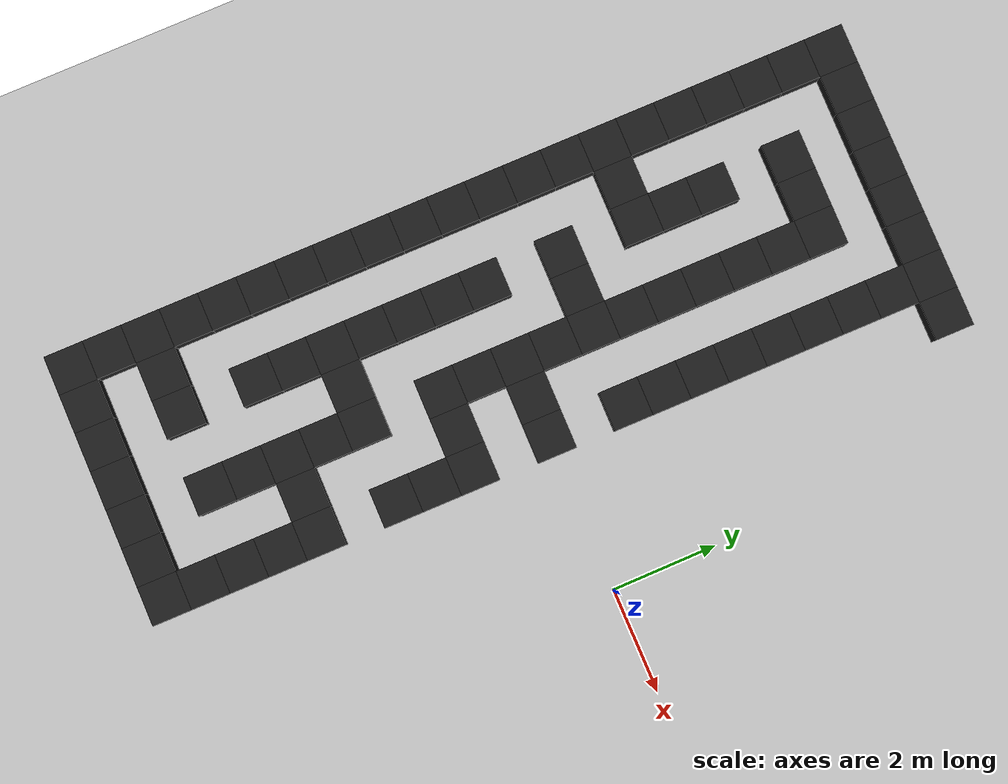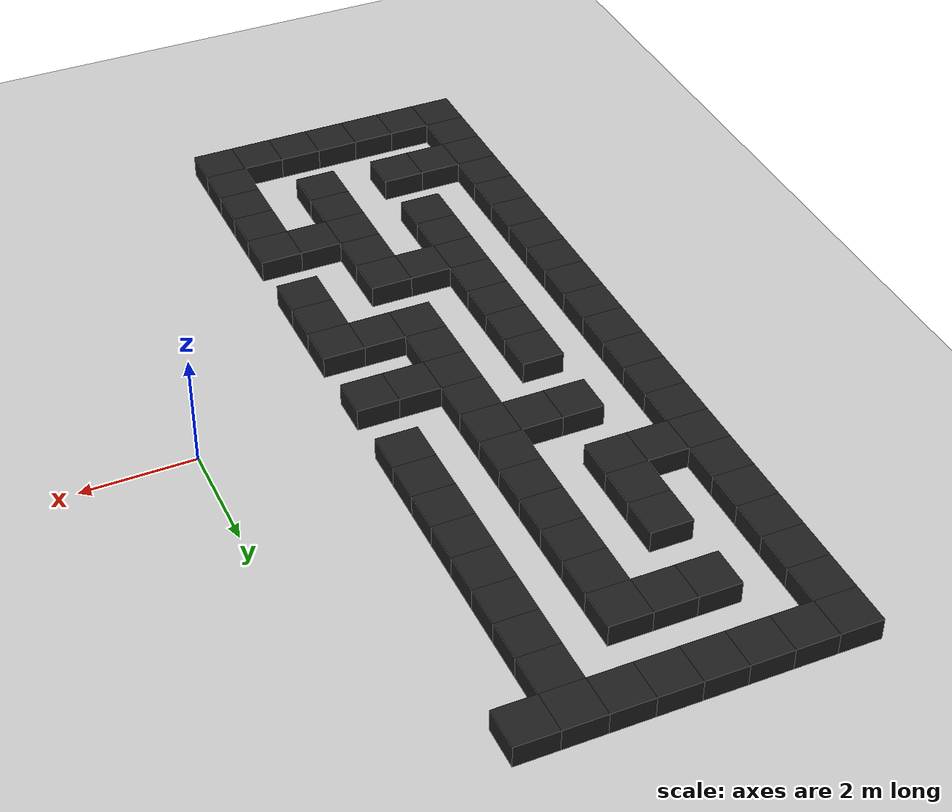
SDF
<sdf version="1.6">
 <world name="maze_gems">
  <include><uri>model://models/sun</uri></include>
  <include><uri>model://models/ground_plane</uri></include>
  <model name="walls">
   <static>true</static>
   <link name="wall_152">
    <pose>-2.25 7.5 0.2 0 0 0</pose>
    <visual name="wall_152_visual">
     <geometry><box><size>0.75 0.75 0.4</size></box></geometry>
     <material>
      <script><uri>file://media/materials/scripts/gazebo.material</uri><name>Gazebo/Black</name></script>
     </material>
    </visual>
    <collision name="wall_152_collision"><geometry><box><size>0.75 0.75 0.4</size></box></geometry></collision>
   </link>
   <link name="wall_157">
    <pose>-3.0 7.5 0.2 0 0 0</pose>
    <visual name="wall_157_visual">
     <geometry><box><size>0.75 0.75 0.4</size></box></geometry>
     <material>
      <script><uri>file://media/materials/scripts/gazebo.material</uri><name>Gazebo/Black</name></script>
     </material>
    </visual>
    <collision name="wall_157_collision"><geometry><box><size>0.75 0.75 0.4</size></box></geometry></collision>
   </link>
   <link name="wall_158">
    <pose>-3.0 6.75 0.2 0 0 0</pose>
    <visual name="wall_158_visual">
     <geometry><box><size>0.75 0.75 0.4</size></box></geometry>
     <material>
      <script><uri>file://media/materials/scripts/gazebo.material</uri><name>Gazebo/Black</name></script>
     </material>
    </visual>
    <collision name="wall_158_collision"><geometry><box><size>0.75 0.75 0.4</size></box></geometry></collision>
   </link>
   <link name="wall_159">
    <pose>-3.0 6.0 0.2 0 0 0</pose>
    <visual name="wall_159_visual">
     <geometry><box><size>0.75 0.75 0.4</size></box></geometry>
     <material>
      <script><uri>file://media/materials/scripts/gazebo.material</uri><name>Gazebo/Black</name></script>
     </material>
    </visual>
    <collision name="wall_159_collision"><geometry><box><size>0.75 0.75 0.4</size></box></geometry></collision>
   </link>
   <link name="wall_160">
    <pose>-3.0 5.25 0.2 0 0 0</pose>
    <visual name="wall_160_visual">
     <geometry><box><size>0.75 0.75 0.4</size></box></geometry>
     <material>
      <script><uri>file://media/materials/scripts/gazebo.material</uri><name>Gazebo/Black</name></script>
     </material>
    </visual>
    <collision name="wall_160_collision"><geometry><box><size>0.75 0.75 0.4</size></box></geometry></collision>
   </link>
   <link name="wall_161">
    <pose>-3.0 4.5 0.2 0 0 0</pose>
    <visual name="wall_161_visual">
     <geometry><box><size>0.75 0.75 0.4</size></box></geometry>
     <material>
      <script><uri>file://media/materials/scripts/gazebo.material</uri><name>Gazebo/Black</name></script>
     </material>
    </visual>
    <collision name="wall_161_collision"><geometry><box><size>0.75 0.75 0.4</size></box></geometry></collision>
   </link>
   <link name="wall_162">
    <pose>-3.0 3.75 0.2 0 0 0</pose>
    <visual name="wall_162_visual">
     <geometry><box><size>0.75 0.75 0.4</size></box></geometry>
     <material>
      <script><uri>file://media/materials/scripts/gazebo.material</uri><name>Gazebo/Black</name></script>
     </material>
    </visual>
    <collision name="wall_162_collision"><geometry><box><size>0.75 0.75 0.4</size></box></geometry></collision>
   </link>
   <link name="wall_163">
    <pose>-3.0 3.0 0.2 0 0 0</pose>
    <visual name="wall_163_visual">
     <geometry><box><size>0.75 0.75 0.4</size></box></geometry>
     <material>
      <script><uri>file://media/materials/scripts/gazebo.material</uri><name>Gazebo/Black</name></script>
     </material>
    </visual>
    <collision name="wall_163_collision"><geometry><box><size>0.75 0.75 0.4</size></box></geometry></collision>
   </link>
   <link name="wall_164">
    <pose>-3.0 2.25 0.2 0 0 0</pose>
    <visual name="wall_164_visual">
     <geometry><box><size>0.75 0.75 0.4</size></box></geometry>
     <material>
      <script><uri>file://media/materials/scripts/gazebo.material</uri><name>Gazebo/Black</name></script>
     </material>
    </visual>
    <collision name="wall_164_collision"><geometry><box><size>0.75 0.75 0.4</size></box></geometry></collision>
   </link>
   <link name="wall_165">
    <pose>-3.0 1.5 0.2 0 0 0</pose>
    <visual name="wall_165_visual">
     <geometry><box><size>0.75 0.75 0.4</size></box></geometry>
     <material>
      <script><uri>file://media/materials/scripts/gazebo.material</uri><name>Gazebo/Black</name></script>
     </material>
    </visual>
    <collision name="wall_165_collision"><geometry><box><size>0.75 0.75 0.4</size></box></geometry></collision>
   </link>
   <link name="wall_166">
    <pose>-3.0 0.0 0.2 0 0 0</pose>
    <visual name="wall_166_visual">
     <geometry><box><size>0.75 0.75 0.4</size></box></geometry>
     <material>
      <script><uri>file://media/materials/scripts/gazebo.material</uri><name>Gazebo/Black</name></script>
     </material>
    </visual>
    <collision name="wall_166_collision"><geometry><box><size>0.75 0.75 0.4</size></box></geometry></collision>
   </link>
   <link name="wall_167">
    <pose>-3.0 -1.5 0.2 0 0 0</pose>
    <visual name="wall_167_visual">
     <geometry><box><size>0.75 0.75 0.4</size></box></geometry>
     <material>
      <script><uri>file://media/materials/scripts/gazebo.material</uri><name>Gazebo/Black</name></script>
     </material>
    </visual>
    <collision name="wall_167_collision"><geometry><box><size>0.75 0.75 0.4</size></box></geometry></collision>
   </link>
   <link name="wall_168">
    <pose>-3.0 -2.25 0.2 0 0 0</pose>
    <visual name="wall_168_visual">
     <geometry><box><size>0.75 0.75 0.4</size></box></geometry>
     <material>
      <script><uri>file://media/materials/scripts/gazebo.material</uri><name>Gazebo/Black</name></script>
     </material>
    </visual>
    <collision name="wall_168_collision"><geometry><box><size>0.75 0.75 0.4</size></box></geometry></collision>
   </link>
   <link name="wall_169">
    <pose>-3.0 -3.0 0.2 0 0 0</pose>
    <visual name="wall_169_visual">
     <geometry><box><size>0.75 0.75 0.4</size></box></geometry>
     <material>
      <script><uri>file://media/materials/scripts/gazebo.material</uri><name>Gazebo/Black</name></script>
     </material>
    </visual>
    <collision name="wall_169_collision"><geometry><box><size>0.75 0.75 0.4</size></box></geometry></collision>
   </link>
   <link name="wall_170">
    <pose>-3.0 -4.5 0.2 0 0 0</pose>
    <visual name="wall_170_visual">
     <geometry><box><size>0.75 0.75 0.4</size></box></geometry>
     <material>
      <script><uri>file://media/materials/scripts/gazebo.material</uri><name>Gazebo/Black</name></script>
     </material>
    </visual>
    <collision name="wall_170_collision"><geometry><box><size>0.75 0.75 0.4</size></box></geometry></collision>
   </link>
   <link name="wall_171">
    <pose>-3.0 -5.25 0.2 0 0 0</pose>
    <visual name="wall_171_visual">
     <geometry><box><size>0.75 0.75 0.4</size></box></geometry>
     <material>
      <script><uri>file://media/materials/scripts/gazebo.material</uri><name>Gazebo/Black</name></script>
     </material>
    </visual>
    <collision name="wall_171_collision"><geometry><box><size>0.75 0.75 0.4</size></box></geometry></collision>
   </link>
   <link name="wall_172">
    <pose>-3.0 -6.0 0.2 0 0 0</pose>
    <visual name="wall_172_visual">
     <geometry><box><size>0.75 0.75 0.4</size></box></geometry>
     <material>
      <script><uri>file://media/materials/scripts/gazebo.material</uri><name>Gazebo/Black</name></script>
     </material>
    </visual>
    <collision name="wall_172_collision"><geometry><box><size>0.75 0.75 0.4</size></box></geometry></collision>
   </link>
   <link name="wall_173">
    <pose>-3.0 -6.75 0.2 0 0 0</pose>
    <visual name="wall_173_visual">
     <geometry><box><size>0.75 0.75 0.4</size></box></geometry>
     <material>
      <script><uri>file://media/materials/scripts/gazebo.material</uri><name>Gazebo/Black</name></script>
     </material>
    </visual>
    <collision name="wall_173_collision"><geometry><box><size>0.75 0.75 0.4</size></box></geometry></collision>
   </link>
   <link name="wall_174">
    <pose>-3.0 -7.5 0.2 0 0 0</pose>
    <visual name="wall_174_visual">
     <geometry><box><size>0.75 0.75 0.4</size></box></geometry>
     <material>
      <script><uri>file://media/materials/scripts/gazebo.material</uri><name>Gazebo/Black</name></script>
     </material>
    </visual>
    <collision name="wall_174_collision"><geometry><box><size>0.75 0.75 0.4</size></box></geometry></collision>
   </link>
   <link name="wall_175">
    <pose>-3.75 7.5 0.2 0 0 0</pose>
    <visual name="wall_175_visual">
     <geometry><box><size>0.75 0.75 0.4</size></box></geometry>
     <material>
      <script><uri>file://media/materials/scripts/gazebo.material</uri><name>Gazebo/Black</name></script>
     </material>
    </visual>
    <collision name="wall_175_collision"><geometry><box><size>0.75 0.75 0.4</size></box></geometry></collision>
   </link>
   <link name="wall_176">
    <pose>-3.75 0.0 0.2 0 0 0</pose>
    <visual name="wall_176_visual">
     <geometry><box><size>0.75 0.75 0.4</size></box></geometry>
     <material>
      <script><uri>file://media/materials/scripts/gazebo.material</uri><name>Gazebo/Black</name></script>
     </material>
    </visual>
    <collision name="wall_176_collision"><geometry><box><size>0.75 0.75 0.4</size></box></geometry></collision>
   </link>
   <link name="wall_177">
    <pose>-3.75 -1.5 0.2 0 0 0</pose>
    <visual name="wall_177_visual">
     <geometry><box><size>0.75 0.75 0.4</size></box></geometry>
     <material>
      <script><uri>file://media/materials/scripts/gazebo.material</uri><name>Gazebo/Black</name></script>
     </material>
    </visual>
    <collision name="wall_177_collision"><geometry><box><size>0.75 0.75 0.4</size></box></geometry></collision>
   </link>
   <link name="wall_178">
    <pose>-3.75 -4.5 0.2 0 0 0</pose>
    <visual name="wall_178_visual">
     <geometry><box><size>0.75 0.75 0.4</size></box></geometry>
     <material>
      <script><uri>file://media/materials/scripts/gazebo.material</uri><name>Gazebo/Black</name></script>
     </material>
    </visual>
    <collision name="wall_178_collision"><geometry><box><size>0.75 0.75 0.4</size></box></geometry></collision>
   </link>
   <link name="wall_179">
    <pose>-3.75 -7.5 0.2 0 0 0</pose>
    <visual name="wall_179_visual">
     <geometry><box><size>0.75 0.75 0.4</size></box></geometry>
     <material>
      <script><uri>file://media/materials/scripts/gazebo.material</uri><name>Gazebo/Black</name></script>
     </material>
    </visual>
    <collision name="wall_179_collision"><geometry><box><size>0.75 0.75 0.4</size></box></geometry></collision>
   </link>
   <link name="wall_180">
    <pose>-4.5 7.5 0.2 0 0 0</pose>
    <visual name="wall_180_visual">
     <geometry><box><size>0.75 0.75 0.4</size></box></geometry>
     <material>
      <script><uri>file://media/materials/scripts/gazebo.material</uri><name>Gazebo/Black</name></script>
     </material>
    </visual>
    <collision name="wall_180_collision"><geometry><box><size>0.75 0.75 0.4</size></box></geometry></collision>
   </link>
   <link name="wall_181">
    <pose>-4.5 6.0 0.2 0 0 0</pose>
    <visual name="wall_181_visual">
     <geometry><box><size>0.75 0.75 0.4</size></box></geometry>
     <material>
      <script><uri>file://media/materials/scripts/gazebo.material</uri><name>Gazebo/Black</name></script>
     </material>
    </visual>
    <collision name="wall_181_collision"><geometry><box><size>0.75 0.75 0.4</size></box></geometry></collision>
   </link>
   <link name="wall_182">
    <pose>-4.5 5.25 0.2 0 0 0</pose>
    <visual name="wall_182_visual">
     <geometry><box><size>0.75 0.75 0.4</size></box></geometry>
     <material>
      <script><uri>file://media/materials/scripts/gazebo.material</uri><name>Gazebo/Black</name></script>
     </material>
    </visual>
    <collision name="wall_182_collision"><geometry><box><size>0.75 0.75 0.4</size></box></geometry></collision>
   </link>
   <link name="wall_183">
    <pose>-4.5 4.5 0.2 0 0 0</pose>
    <visual name="wall_183_visual">
     <geometry><box><size>0.75 0.75 0.4</size></box></geometry>
     <material>
      <script><uri>file://media/materials/scripts/gazebo.material</uri><name>Gazebo/Black</name></script>
     </material>
    </visual>
    <collision name="wall_183_collision"><geometry><box><size>0.75 0.75 0.4</size></box></geometry></collision>
   </link>
   <link name="wall_184">
    <pose>-4.5 3.75 0.2 0 0 0</pose>
    <visual name="wall_184_visual">
     <geometry><box><size>0.75 0.75 0.4</size></box></geometry>
     <material>
      <script><uri>file://media/materials/scripts/gazebo.material</uri><name>Gazebo/Black</name></script>
     </material>
    </visual>
    <collision name="wall_184_collision"><geometry><box><size>0.75 0.75 0.4</size></box></geometry></collision>
   </link>
   <link name="wall_185">
    <pose>-4.5 3.0 0.2 0 0 0</pose>
    <visual name="wall_185_visual">
     <geometry><box><size>0.75 0.75 0.4</size></box></geometry>
     <material>
      <script><uri>file://media/materials/scripts/gazebo.material</uri><name>Gazebo/Black</name></script>
     </material>
    </visual>
    <collision name="wall_185_collision"><geometry><box><size>0.75 0.75 0.4</size></box></geometry></collision>
   </link>
   <link name="wall_186">
    <pose>-4.5 2.25 0.2 0 0 0</pose>
    <visual name="wall_186_visual">
     <geometry><box><size>0.75 0.75 0.4</size></box></geometry>
     <material>
      <script><uri>file://media/materials/scripts/gazebo.material</uri><name>Gazebo/Black</name></script>
     </material>
    </visual>
    <collision name="wall_186_collision"><geometry><box><size>0.75 0.75 0.4</size></box></geometry></collision>
   </link>
   <link name="wall_187">
    <pose>-4.5 1.5 0.2 0 0 0</pose>
    <visual name="wall_187_visual">
     <geometry><box><size>0.75 0.75 0.4</size></box></geometry>
     <material>
      <script><uri>file://media/materials/scripts/gazebo.material</uri><name>Gazebo/Black</name></script>
     </material>
    </visual>
    <collision name="wall_187_collision"><geometry><box><size>0.75 0.75 0.4</size></box></geometry></collision>
   </link>
   <link name="wall_188">
    <pose>-4.5 0.75 0.2 0 0 0</pose>
    <visual name="wall_188_visual">
     <geometry><box><size>0.75 0.75 0.4</size></box></geometry>
     <material>
      <script><uri>file://media/materials/scripts/gazebo.material</uri><name>Gazebo/Black</name></script>
     </material>
    </visual>
    <collision name="wall_188_collision"><geometry><box><size>0.75 0.75 0.4</size></box></geometry></collision>
   </link>
   <link name="wall_189">
    <pose>-4.5 0.0 0.2 0 0 0</pose>
    <visual name="wall_189_visual">
     <geometry><box><size>0.75 0.75 0.4</size></box></geometry>
     <material>
      <script><uri>file://media/materials/scripts/gazebo.material</uri><name>Gazebo/Black</name></script>
     </material>
    </visual>
    <collision name="wall_189_collision"><geometry><box><size>0.75 0.75 0.4</size></box></geometry></collision>
   </link>
   <link name="wall_190">
    <pose>-4.5 -0.75 0.2 0 0 0</pose>
    <visual name="wall_190_visual">
     <geometry><box><size>0.75 0.75 0.4</size></box></geometry>
     <material>
      <script><uri>file://media/materials/scripts/gazebo.material</uri><name>Gazebo/Black</name></script>
     </material>
    </visual>
    <collision name="wall_190_collision"><geometry><box><size>0.75 0.75 0.4</size></box></geometry></collision>
   </link>
   <link name="wall_191">
    <pose>-4.5 -1.5 0.2 0 0 0</pose>
    <visual name="wall_191_visual">
     <geometry><box><size>0.75 0.75 0.4</size></box></geometry>
     <material>
      <script><uri>file://media/materials/scripts/gazebo.material</uri><name>Gazebo/Black</name></script>
     </material>
    </visual>
    <collision name="wall_191_collision"><geometry><box><size>0.75 0.75 0.4</size></box></geometry></collision>
   </link>
   <link name="wall_192">
    <pose>-4.5 -3.0 0.2 0 0 0</pose>
    <visual name="wall_192_visual">
     <geometry><box><size>0.75 0.75 0.4</size></box></geometry>
     <material>
      <script><uri>file://media/materials/scripts/gazebo.material</uri><name>Gazebo/Black</name></script>
     </material>
    </visual>
    <collision name="wall_192_collision"><geometry><box><size>0.75 0.75 0.4</size></box></geometry></collision>
   </link>
   <link name="wall_193">
    <pose>-4.5 -3.75 0.2 0 0 0</pose>
    <visual name="wall_193_visual">
     <geometry><box><size>0.75 0.75 0.4</size></box></geometry>
     <material>
      <script><uri>file://media/materials/scripts/gazebo.material</uri><name>Gazebo/Black</name></script>
     </material>
    </visual>
    <collision name="wall_193_collision"><geometry><box><size>0.75 0.75 0.4</size></box></geometry></collision>
   </link>
   <link name="wall_194">
    <pose>-4.5 -4.5 0.2 0 0 0</pose>
    <visual name="wall_194_visual">
     <geometry><box><size>0.75 0.75 0.4</size></box></geometry>
     <material>
      <script><uri>file://media/materials/scripts/gazebo.material</uri><name>Gazebo/Black</name></script>
     </material>
    </visual>
    <collision name="wall_194_collision"><geometry><box><size>0.75 0.75 0.4</size></box></geometry></collision>
   </link>
   <link name="wall_195">
    <pose>-4.5 -5.25 0.2 0 0 0</pose>
    <visual name="wall_195_visual">
     <geometry><box><size>0.75 0.75 0.4</size></box></geometry>
     <material>
      <script><uri>file://media/materials/scripts/gazebo.material</uri><name>Gazebo/Black</name></script>
     </material>
    </visual>
    <collision name="wall_195_collision"><geometry><box><size>0.75 0.75 0.4</size></box></geometry></collision>
   </link>
   <link name="wall_196">
    <pose>-4.5 -6.0 0.2 0 0 0</pose>
    <visual name="wall_196_visual">
     <geometry><box><size>0.75 0.75 0.4</size></box></geometry>
     <material>
      <script><uri>file://media/materials/scripts/gazebo.material</uri><name>Gazebo/Black</name></script>
     </material>
    </visual>
    <collision name="wall_196_collision"><geometry><box><size>0.75 0.75 0.4</size></box></geometry></collision>
   </link>
   <link name="wall_197">
    <pose>-4.5 -7.5 0.2 0 0 0</pose>
    <visual name="wall_197_visual">
     <geometry><box><size>0.75 0.75 0.4</size></box></geometry>
     <material>
      <script><uri>file://media/materials/scripts/gazebo.material</uri><name>Gazebo/Black</name></script>
     </material>
    </visual>
    <collision name="wall_197_collision"><geometry><box><size>0.75 0.75 0.4</size></box></geometry></collision>
   </link>
   <link name="wall_198">
    <pose>-5.25 7.5 0.2 0 0 0</pose>
    <visual name="wall_198_visual">
     <geometry><box><size>0.75 0.75 0.4</size></box></geometry>
     <material>
      <script><uri>file://media/materials/scripts/gazebo.material</uri><name>Gazebo/Black</name></script>
     </material>
    </visual>
    <collision name="wall_198_collision"><geometry><box><size>0.75 0.75 0.4</size></box></geometry></collision>
   </link>
   <link name="wall_199">
    <pose>-5.25 6.0 0.2 0 0 0</pose>
    <visual name="wall_199_visual">
     <geometry><box><size>0.75 0.75 0.4</size></box></geometry>
     <material>
      <script><uri>file://media/materials/scripts/gazebo.material</uri><name>Gazebo/Black</name></script>
     </material>
    </visual>
    <collision name="wall_199_collision"><geometry><box><size>0.75 0.75 0.4</size></box></geometry></collision>
   </link>
   <link name="wall_200">
    <pose>-5.25 1.5 0.2 0 0 0</pose>
    <visual name="wall_200_visual">
     <geometry><box><size>0.75 0.75 0.4</size></box></geometry>
     <material>
      <script><uri>file://media/materials/scripts/gazebo.material</uri><name>Gazebo/Black</name></script>
     </material>
    </visual>
    <collision name="wall_200_collision"><geometry><box><size>0.75 0.75 0.4</size></box></geometry></collision>
   </link>
   <link name="wall_201">
    <pose>-5.25 -3.0 0.2 0 0 0</pose>
    <visual name="wall_201_visual">
     <geometry><box><size>0.75 0.75 0.4</size></box></geometry>
     <material>
      <script><uri>file://media/materials/scripts/gazebo.material</uri><name>Gazebo/Black</name></script>
     </material>
    </visual>
    <collision name="wall_201_collision"><geometry><box><size>0.75 0.75 0.4</size></box></geometry></collision>
   </link>
   <link name="wall_202">
    <pose>-5.25 -7.5 0.2 0 0 0</pose>
    <visual name="wall_202_visual">
     <geometry><box><size>0.75 0.75 0.4</size></box></geometry>
     <material>
      <script><uri>file://media/materials/scripts/gazebo.material</uri><name>Gazebo/Black</name></script>
     </material>
    </visual>
    <collision name="wall_202_collision"><geometry><box><size>0.75 0.75 0.4</size></box></geometry></collision>
   </link>
   <link name="wall_203">
    <pose>-6.0 7.5 0.2 0 0 0</pose>
    <visual name="wall_203_visual">
     <geometry><box><size>0.75 0.75 0.4</size></box></geometry>
     <material>
      <script><uri>file://media/materials/scripts/gazebo.material</uri><name>Gazebo/Black</name></script>
     </material>
    </visual>
    <collision name="wall_203_collision"><geometry><box><size>0.75 0.75 0.4</size></box></geometry></collision>
   </link>
   <link name="wall_204">
    <pose>-6.0 6.0 0.2 0 0 0</pose>
    <visual name="wall_204_visual">
     <geometry><box><size>0.75 0.75 0.4</size></box></geometry>
     <material>
      <script><uri>file://media/materials/scripts/gazebo.material</uri><name>Gazebo/Black</name></script>
     </material>
    </visual>
    <collision name="wall_204_collision"><geometry><box><size>0.75 0.75 0.4</size></box></geometry></collision>
   </link>
   <link name="wall_205">
    <pose>-6.0 4.5 0.2 0 0 0</pose>
    <visual name="wall_205_visual">
     <geometry><box><size>0.75 0.75 0.4</size></box></geometry>
     <material>
      <script><uri>file://media/materials/scripts/gazebo.material</uri><name>Gazebo/Black</name></script>
     </material>
    </visual>
    <collision name="wall_205_collision"><geometry><box><size>0.75 0.75 0.4</size></box></geometry></collision>
   </link>
   <link name="wall_206">
    <pose>-6.0 3.75 0.2 0 0 0</pose>
    <visual name="wall_206_visual">
     <geometry><box><size>0.75 0.75 0.4</size></box></geometry>
     <material>
      <script><uri>file://media/materials/scripts/gazebo.material</uri><name>Gazebo/Black</name></script>
     </material>
    </visual>
    <collision name="wall_206_collision"><geometry><box><size>0.75 0.75 0.4</size></box></geometry></collision>
   </link>
   <link name="wall_207">
    <pose>-6.0 3.0 0.2 0 0 0</pose>
    <visual name="wall_207_visual">
     <geometry><box><size>0.75 0.75 0.4</size></box></geometry>
     <material>
      <script><uri>file://media/materials/scripts/gazebo.material</uri><name>Gazebo/Black</name></script>
     </material>
    </visual>
    <collision name="wall_207_collision"><geometry><box><size>0.75 0.75 0.4</size></box></geometry></collision>
   </link>
   <link name="wall_208">
    <pose>-6.0 1.5 0.2 0 0 0</pose>
    <visual name="wall_208_visual">
     <geometry><box><size>0.75 0.75 0.4</size></box></geometry>
     <material>
      <script><uri>file://media/materials/scripts/gazebo.material</uri><name>Gazebo/Black</name></script>
     </material>
    </visual>
    <collision name="wall_208_collision"><geometry><box><size>0.75 0.75 0.4</size></box></geometry></collision>
   </link>
   <link name="wall_209">
    <pose>-6.0 0.0 0.2 0 0 0</pose>
    <visual name="wall_209_visual">
     <geometry><box><size>0.75 0.75 0.4</size></box></geometry>
     <material>
      <script><uri>file://media/materials/scripts/gazebo.material</uri><name>Gazebo/Black</name></script>
     </material>
    </visual>
    <collision name="wall_209_collision"><geometry><box><size>0.75 0.75 0.4</size></box></geometry></collision>
   </link>
   <link name="wall_210">
    <pose>-6.0 -0.75 0.2 0 0 0</pose>
    <visual name="wall_210_visual">
     <geometry><box><size>0.75 0.75 0.4</size></box></geometry>
     <material>
      <script><uri>file://media/materials/scripts/gazebo.material</uri><name>Gazebo/Black</name></script>
     </material>
    </visual>
    <collision name="wall_210_collision"><geometry><box><size>0.75 0.75 0.4</size></box></geometry></collision>
   </link>
   <link name="wall_211">
    <pose>-6.0 -1.5 0.2 0 0 0</pose>
    <visual name="wall_211_visual">
     <geometry><box><size>0.75 0.75 0.4</size></box></geometry>
     <material>
      <script><uri>file://media/materials/scripts/gazebo.material</uri><name>Gazebo/Black</name></script>
     </material>
    </visual>
    <collision name="wall_211_collision"><geometry><box><size>0.75 0.75 0.4</size></box></geometry></collision>
   </link>
   <link name="wall_212">
    <pose>-6.0 -2.25 0.2 0 0 0</pose>
    <visual name="wall_212_visual">
     <geometry><box><size>0.75 0.75 0.4</size></box></geometry>
     <material>
      <script><uri>file://media/materials/scripts/gazebo.material</uri><name>Gazebo/Black</name></script>
     </material>
    </visual>
    <collision name="wall_212_collision"><geometry><box><size>0.75 0.75 0.4</size></box></geometry></collision>
   </link>
   <link name="wall_213">
    <pose>-6.0 -3.0 0.2 0 0 0</pose>
    <visual name="wall_213_visual">
     <geometry><box><size>0.75 0.75 0.4</size></box></geometry>
     <material>
      <script><uri>file://media/materials/scripts/gazebo.material</uri><name>Gazebo/Black</name></script>
     </material>
    </visual>
    <collision name="wall_213_collision"><geometry><box><size>0.75 0.75 0.4</size></box></geometry></collision>
   </link>
   <link name="wall_214">
    <pose>-6.0 -3.75 0.2 0 0 0</pose>
    <visual name="wall_214_visual">
     <geometry><box><size>0.75 0.75 0.4</size></box></geometry>
     <material>
      <script><uri>file://media/materials/scripts/gazebo.material</uri><name>Gazebo/Black</name></script>
     </material>
    </visual>
    <collision name="wall_214_collision"><geometry><box><size>0.75 0.75 0.4</size></box></geometry></collision>
   </link>
   <link name="wall_215">
    <pose>-6.0 -4.5 0.2 0 0 0</pose>
    <visual name="wall_215_visual">
     <geometry><box><size>0.75 0.75 0.4</size></box></geometry>
     <material>
      <script><uri>file://media/materials/scripts/gazebo.material</uri><name>Gazebo/Black</name></script>
     </material>
    </visual>
    <collision name="wall_215_collision"><geometry><box><size>0.75 0.75 0.4</size></box></geometry></collision>
   </link>
   <link name="wall_216">
    <pose>-6.0 -6.0 0.2 0 0 0</pose>
    <visual name="wall_216_visual">
     <geometry><box><size>0.75 0.75 0.4</size></box></geometry>
     <material>
      <script><uri>file://media/materials/scripts/gazebo.material</uri><name>Gazebo/Black</name></script>
     </material>
    </visual>
    <collision name="wall_216_collision"><geometry><box><size>0.75 0.75 0.4</size></box></geometry></collision>
   </link>
   <link name="wall_217">
    <pose>-6.0 -7.5 0.2 0 0 0</pose>
    <visual name="wall_217_visual">
     <geometry><box><size>0.75 0.75 0.4</size></box></geometry>
     <material>
      <script><uri>file://media/materials/scripts/gazebo.material</uri><name>Gazebo/Black</name></script>
     </material>
    </visual>
    <collision name="wall_217_collision"><geometry><box><size>0.75 0.75 0.4</size></box></geometry></collision>
   </link>
   <link name="wall_218">
    <pose>-6.75 7.5 0.2 0 0 0</pose>
    <visual name="wall_218_visual">
     <geometry><box><size>0.75 0.75 0.4</size></box></geometry>
     <material>
      <script><uri>file://media/materials/scripts/gazebo.material</uri><name>Gazebo/Black</name></script>
     </material>
    </visual>
    <collision name="wall_218_collision"><geometry><box><size>0.75 0.75 0.4</size></box></geometry></collision>
   </link>
   <link name="wall_219">
    <pose>-6.75 3.0 0.2 0 0 0</pose>
    <visual name="wall_219_visual">
     <geometry><box><size>0.75 0.75 0.4</size></box></geometry>
     <material>
      <script><uri>file://media/materials/scripts/gazebo.material</uri><name>Gazebo/Black</name></script>
     </material>
    </visual>
    <collision name="wall_219_collision"><geometry><box><size>0.75 0.75 0.4</size></box></geometry></collision>
   </link>
   <link name="wall_220">
    <pose>-6.75 -6.0 0.2 0 0 0</pose>
    <visual name="wall_220_visual">
     <geometry><box><size>0.75 0.75 0.4</size></box></geometry>
     <material>
      <script><uri>file://media/materials/scripts/gazebo.material</uri><name>Gazebo/Black</name></script>
     </material>
    </visual>
    <collision name="wall_220_collision"><geometry><box><size>0.75 0.75 0.4</size></box></geometry></collision>
   </link>
   <link name="wall_221">
    <pose>-6.75 -7.5 0.2 0 0 0</pose>
    <visual name="wall_221_visual">
     <geometry><box><size>0.75 0.75 0.4</size></box></geometry>
     <material>
      <script><uri>file://media/materials/scripts/gazebo.material</uri><name>Gazebo/Black</name></script>
     </material>
    </visual>
    <collision name="wall_221_collision"><geometry><box><size>0.75 0.75 0.4</size></box></geometry></collision>
   </link>
   <link name="wall_222">
    <pose>-7.5 7.5 0.2 0 0 0</pose>
    <visual name="wall_222_visual">
     <geometry><box><size>0.75 0.75 0.4</size></box></geometry>
     <material>
      <script><uri>file://media/materials/scripts/gazebo.material</uri><name>Gazebo/Black</name></script>
     </material>
    </visual>
    <collision name="wall_222_collision"><geometry><box><size>0.75 0.75 0.4</size></box></geometry></collision>
   </link>
   <link name="wall_223">
    <pose>-7.5 6.75 0.2 0 0 0</pose>
    <visual name="wall_223_visual">
     <geometry><box><size>0.75 0.75 0.4</size></box></geometry>
     <material>
      <script><uri>file://media/materials/scripts/gazebo.material</uri><name>Gazebo/Black</name></script>
     </material>
    </visual>
    <collision name="wall_223_collision"><geometry><box><size>0.75 0.75 0.4</size></box></geometry></collision>
   </link>
   <link name="wall_224">
    <pose>-7.5 6.0 0.2 0 0 0</pose>
    <visual name="wall_224_visual">
     <geometry><box><size>0.75 0.75 0.4</size></box></geometry>
     <material>
      <script><uri>file://media/materials/scripts/gazebo.material</uri><name>Gazebo/Black</name></script>
     </material>
    </visual>
    <collision name="wall_224_collision"><geometry><box><size>0.75 0.75 0.4</size></box></geometry></collision>
   </link>
   <link name="wall_225">
    <pose>-7.5 5.25 0.2 0 0 0</pose>
    <visual name="wall_225_visual">
     <geometry><box><size>0.75 0.75 0.4</size></box></geometry>
     <material>
      <script><uri>file://media/materials/scripts/gazebo.material</uri><name>Gazebo/Black</name></script>
     </material>
    </visual>
    <collision name="wall_225_collision"><geometry><box><size>0.75 0.75 0.4</size></box></geometry></collision>
   </link>
   <link name="wall_226">
    <pose>-7.5 4.5 0.2 0 0 0</pose>
    <visual name="wall_226_visual">
     <geometry><box><size>0.75 0.75 0.4</size></box></geometry>
     <material>
      <script><uri>file://media/materials/scripts/gazebo.material</uri><name>Gazebo/Black</name></script>
     </material>
    </visual>
    <collision name="wall_226_collision"><geometry><box><size>0.75 0.75 0.4</size></box></geometry></collision>
   </link>
   <link name="wall_227">
    <pose>-7.5 3.75 0.2 0 0 0</pose>
    <visual name="wall_227_visual">
     <geometry><box><size>0.75 0.75 0.4</size></box></geometry>
     <material>
      <script><uri>file://media/materials/scripts/gazebo.material</uri><name>Gazebo/Black</name></script>
     </material>
    </visual>
    <collision name="wall_227_collision"><geometry><box><size>0.75 0.75 0.4</size></box></geometry></collision>
   </link>
   <link name="wall_228">
    <pose>-7.5 3.0 0.2 0 0 0</pose>
    <visual name="wall_228_visual">
     <geometry><box><size>0.75 0.75 0.4</size></box></geometry>
     <material>
      <script><uri>file://media/materials/scripts/gazebo.material</uri><name>Gazebo/Black</name></script>
     </material>
    </visual>
    <collision name="wall_228_collision"><geometry><box><size>0.75 0.75 0.4</size></box></geometry></collision>
   </link>
   <link name="wall_229">
    <pose>-7.5 2.25 0.2 0 0 0</pose>
    <visual name="wall_229_visual">
     <geometry><box><size>0.75 0.75 0.4</size></box></geometry>
     <material>
      <script><uri>file://media/materials/scripts/gazebo.material</uri><name>Gazebo/Black</name></script>
     </material>
    </visual>
    <collision name="wall_229_collision"><geometry><box><size>0.75 0.75 0.4</size></box></geometry></collision>
   </link>
   <link name="wall_230">
    <pose>-7.5 1.5 0.2 0 0 0</pose>
    <visual name="wall_230_visual">
     <geometry><box><size>0.75 0.75 0.4</size></box></geometry>
     <material>
      <script><uri>file://media/materials/scripts/gazebo.material</uri><name>Gazebo/Black</name></script>
     </material>
    </visual>
    <collision name="wall_230_collision"><geometry><box><size>0.75 0.75 0.4</size></box></geometry></collision>
   </link>
   <link name="wall_231">
    <pose>-7.5 0.75 0.2 0 0 0</pose>
    <visual name="wall_231_visual">
     <geometry><box><size>0.75 0.75 0.4</size></box></geometry>
     <material>
      <script><uri>file://media/materials/scripts/gazebo.material</uri><name>Gazebo/Black</name></script>
     </material>
    </visual>
    <collision name="wall_231_collision"><geometry><box><size>0.75 0.75 0.4</size></box></geometry></collision>
   </link>
   <link name="wall_232">
    <pose>-7.5 0.0 0.2 0 0 0</pose>
    <visual name="wall_232_visual">
     <geometry><box><size>0.75 0.75 0.4</size></box></geometry>
     <material>
      <script><uri>file://media/materials/scripts/gazebo.material</uri><name>Gazebo/Black</name></script>
     </material>
    </visual>
    <collision name="wall_232_collision"><geometry><box><size>0.75 0.75 0.4</size></box></geometry></collision>
   </link>
   <link name="wall_233">
    <pose>-7.5 -0.75 0.2 0 0 0</pose>
    <visual name="wall_233_visual">
     <geometry><box><size>0.75 0.75 0.4</size></box></geometry>
     <material>
      <script><uri>file://media/materials/scripts/gazebo.material</uri><name>Gazebo/Black</name></script>
     </material>
    </visual>
    <collision name="wall_233_collision"><geometry><box><size>0.75 0.75 0.4</size></box></geometry></collision>
   </link>
   <link name="wall_234">
    <pose>-7.5 -1.5 0.2 0 0 0</pose>
    <visual name="wall_234_visual">
     <geometry><box><size>0.75 0.75 0.4</size></box></geometry>
     <material>
      <script><uri>file://media/materials/scripts/gazebo.material</uri><name>Gazebo/Black</name></script>
     </material>
    </visual>
    <collision name="wall_234_collision"><geometry><box><size>0.75 0.75 0.4</size></box></geometry></collision>
   </link>
   <link name="wall_235">
    <pose>-7.5 -2.25 0.2 0 0 0</pose>
    <visual name="wall_235_visual">
     <geometry><box><size>0.75 0.75 0.4</size></box></geometry>
     <material>
      <script><uri>file://media/materials/scripts/gazebo.material</uri><name>Gazebo/Black</name></script>
     </material>
    </visual>
    <collision name="wall_235_collision"><geometry><box><size>0.75 0.75 0.4</size></box></geometry></collision>
   </link>
   <link name="wall_236">
    <pose>-7.5 -3.0 0.2 0 0 0</pose>
    <visual name="wall_236_visual">
     <geometry><box><size>0.75 0.75 0.4</size></box></geometry>
     <material>
      <script><uri>file://media/materials/scripts/gazebo.material</uri><name>Gazebo/Black</name></script>
     </material>
    </visual>
    <collision name="wall_236_collision"><geometry><box><size>0.75 0.75 0.4</size></box></geometry></collision>
   </link>
   <link name="wall_237">
    <pose>-7.5 -3.75 0.2 0 0 0</pose>
    <visual name="wall_237_visual">
     <geometry><box><size>0.75 0.75 0.4</size></box></geometry>
     <material>
      <script><uri>file://media/materials/scripts/gazebo.material</uri><name>Gazebo/Black</name></script>
     </material>
    </visual>
    <collision name="wall_237_collision"><geometry><box><size>0.75 0.75 0.4</size></box></geometry></collision>
   </link>
   <link name="wall_238">
    <pose>-7.5 -4.5 0.2 0 0 0</pose>
    <visual name="wall_238_visual">
     <geometry><box><size>0.75 0.75 0.4</size></box></geometry>
     <material>
      <script><uri>file://media/materials/scripts/gazebo.material</uri><name>Gazebo/Black</name></script>
     </material>
    </visual>
    <collision name="wall_238_collision"><geometry><box><size>0.75 0.75 0.4</size></box></geometry></collision>
   </link>
   <link name="wall_239">
    <pose>-7.5 -5.25 0.2 0 0 0</pose>
    <visual name="wall_239_visual">
     <geometry><box><size>0.75 0.75 0.4</size></box></geometry>
     <material>
      <script><uri>file://media/materials/scripts/gazebo.material</uri><name>Gazebo/Black</name></script>
     </material>
    </visual>
    <collision name="wall_239_collision"><geometry><box><size>0.75 0.75 0.4</size></box></geometry></collision>
   </link>
   <link name="wall_240">
    <pose>-7.5 -6.0 0.2 0 0 0</pose>
    <visual name="wall_240_visual">
     <geometry><box><size>0.75 0.75 0.4</size></box></geometry>
     <material>
      <script><uri>file://media/materials/scripts/gazebo.material</uri><name>Gazebo/Black</name></script>
     </material>
    </visual>
    <collision name="wall_240_collision"><geometry><box><size>0.75 0.75 0.4</size></box></geometry></collision>
   </link>
   <link name="wall_241">
    <pose>-7.5 -6.75 0.2 0 0 0</pose>
    <visual name="wall_241_visual">
     <geometry><box><size>0.75 0.75 0.4</size></box></geometry>
     <material>
      <script><uri>file://media/materials/scripts/gazebo.material</uri><name>Gazebo/Black</name></script>
     </material>
    </visual>
    <collision name="wall_241_collision"><geometry><box><size>0.75 0.75 0.4</size></box></geometry></collision>
   </link>
   <link name="wall_242">
    <pose>-7.5 -7.5 0.2 0 0 0</pose>
    <visual name="wall_242_visual">
     <geometry><box><size>0.75 0.75 0.4</size></box></geometry>
     <material>
      <script><uri>file://media/materials/scripts/gazebo.material</uri><name>Gazebo/Black</name></script>
     </material>
    </visual>
    <collision name="wall_242_collision"><geometry><box><size>0.75 0.75 0.4</size></box></geometry></collision>
   </link>
  </model>
 </world>
</sdf>
